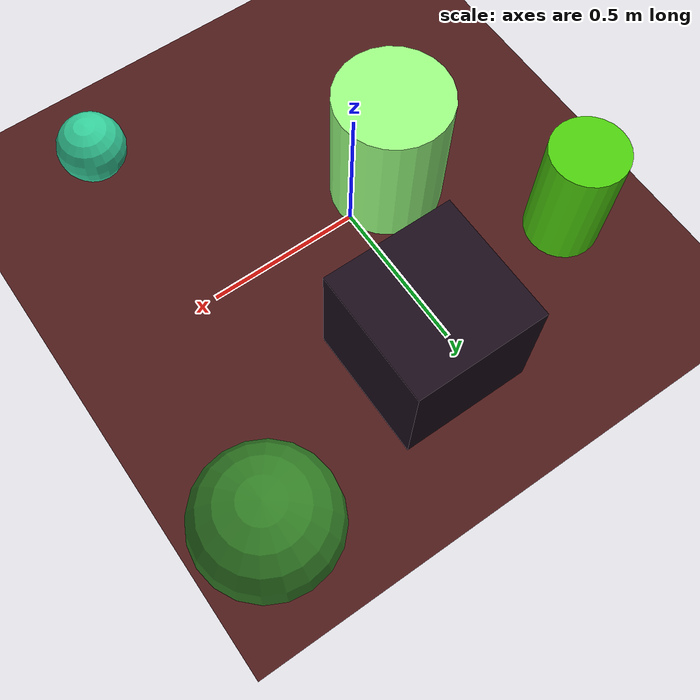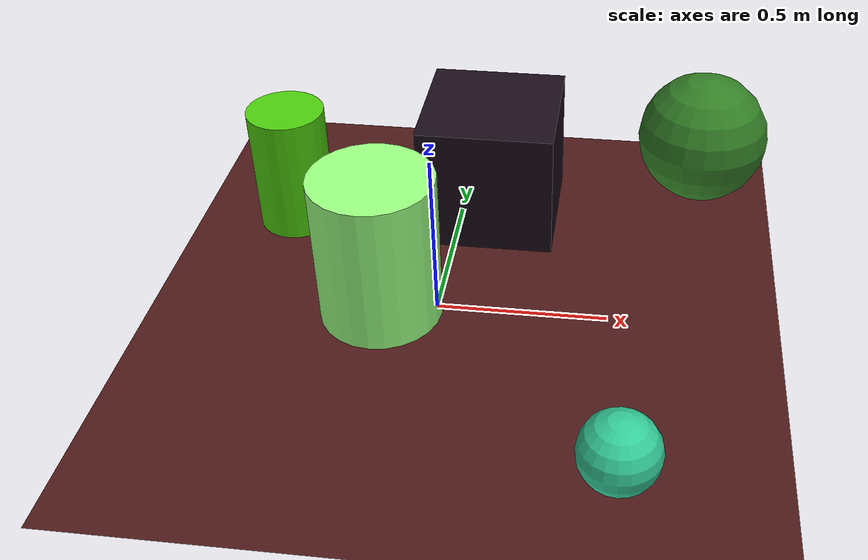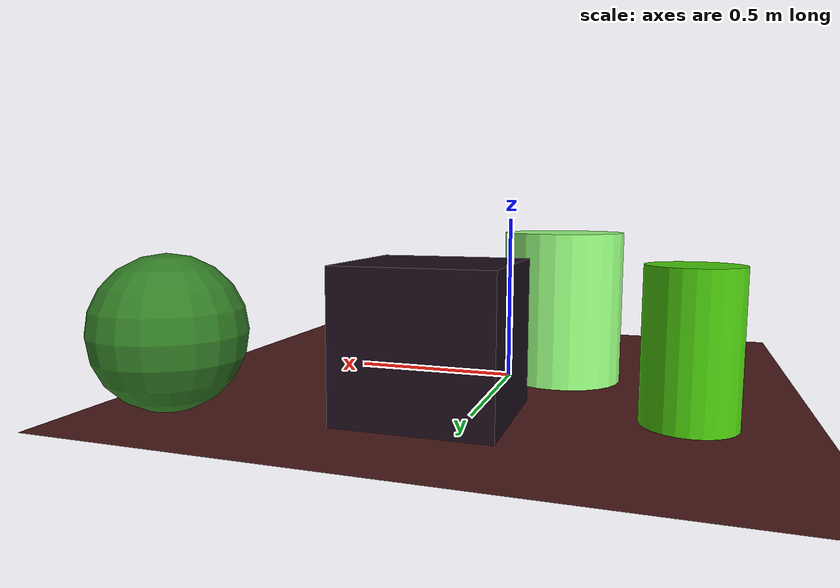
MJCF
<mujoco>
   <asset>
<texture type="skybox" builtin="gradient" rgb1="0.9 0.5 0.8" rgb2="0.1 1.0 0.5" width="256" height="256"/>
<texture name="flat_0" builtin="flat" rgb1="0.6 1.0 0.5" rgb2="0.6 1.0 0.5"  width="200" height="200"/>
<texture name="checker_1" builtin="checker" type="2d" rgb1="0.1 0.4 0.0" rgb2="0.3 0.6 0.3" width="200" height="200"/>
<texture name="flat_2" builtin="flat" rgb1="0.2 0.8 0.6" rgb2="0.2 0.8 0.6"  width="200" height="200"/>
<texture name="checker_3" builtin="checker" type="2d" rgb1="0.6 1.0 0.0" rgb2="0.0 0.6 0.1" width="200" height="200"/>
<texture name="gradient_4" builtin="gradient" rgb1="0.0 0.1 0.2" rgb2="0.2 0.0 0.0" width="200" height="200"/><material name="flat_0_mat" reflectance="0" texture="flat_0" texuniform="true"/>
<material name="checker_1_mat" reflectance="0" texrepeat="2 2" texture="checker_1" texuniform="false" />
<material name="flat_2_mat" reflectance="0" texture="flat_2" texuniform="true"/>
<material name="checker_3_mat" reflectance="0" texrepeat="2 2" texture="checker_3" texuniform="false" />
<material name="gradient_4_mat" reflectance="0" texture="gradient_4" texuniform="true"/>
   </asset>

   <worldbody>
      <light diffuse=".9 .9 .9" pos="0 0 3" dir="0 0 -1"/>
     <geom type="plane" size="1 1 0.1" rgba="0.3 0.1 0.1 1"/>
<geom type="cylinder" pos="-0.16 -0.03 0.23" size="0.18 0.23 0.23" material="flat_0_mat" />
<geom type="sphere" pos="0.77 0.71 0.21" size="0.21 0.21 0.21" material="checker_1_mat" />
<geom type="sphere" pos="0.56 -0.62 0.11" size="0.11 0.11 0.11" material="flat_2_mat" />
<geom type="cylinder" pos="-0.53 0.4 0.2" size="0.12 0.2 0.2" material="checker_3_mat" />
<geom type="box" pos="0.1 0.51 0.2" size="0.21 0.21 0.2" material="gradient_4_mat" /><camera euler="60 0 180" fovy="60" name="camera_a" pos="0 -1.5 1"></camera>   </worldbody>
</mujoco>
